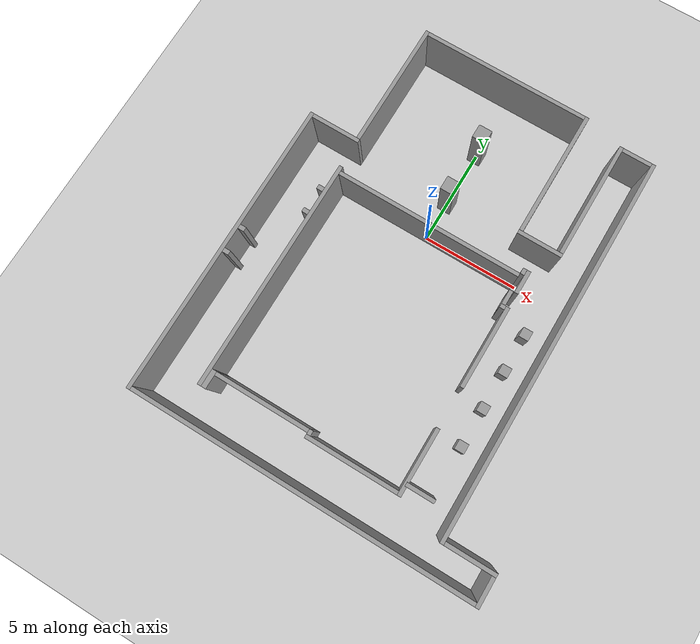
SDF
<?xml version="1.0" ?>
<sdf version="1.4">
  <world name="default">
    <include>
      <uri>model://ground_plane</uri>
    </include>
    <include>
      <uri>model://sun</uri>
    </include>
<model name="3rdFloor">
    <static>true</static>
   <!--inner walls clockwise  -->
   <!--wall at large labratory room -->
    <link name="link1">
      <pose>0 -0.1 1.4 0 0 0</pose>
      <collision name="collision">
        <geometry>
          <box>
            <size>9.65 0.2 2.8</size>
          </box>
        </geometry>
      </collision>
      <visual name="visual">
        <cast_shadows>false</cast_shadows>
        <geometry>
          <box>
            <size>9.65 0.2 2.8</size>
          </box>
        </geometry>
        <material>
          <script>
            <uri>model://grey_wall/materials/scripts</uri>
            <uri>model://grey_wall/materials/textures</uri>
            <name>vrc/grey_wall</name>
          </script>
        </material>
      </visual>
    </link>

     <link name="link2">
      <pose>4.923 0.15 1.4  0 0 1.57079633</pose>
      <collision name="collision">
        <geometry>
          <box>
            <size>0.3 0.2 2.8</size>
          </box>
        </geometry>
      </collision>
      <visual name="visual">
        <cast_shadows>false</cast_shadows>
        <geometry>
          <box>
            <size>0.3 0.2 2.8</size>
          </box>
        </geometry>
        <material>
          <script>
            <uri>model://grey_wall/materials/scripts</uri>
            <uri>model://grey_wall/materials/textures</uri>
            <name>vrc/grey_wall</name>
          </script>
        </material>
      </visual>
    </link>

    <!-- wall in the floor between labratory and first door-->
    <link name="link4">
      <pose>5.125 -0.3 1.4  0 0 1.57079633</pose>
      <collision name="collision">
        <geometry>
          <box>
            <size>1.2 0.2 2.8</size>
          </box>
        </geometry>
      </collision>
      <visual name="visual">
        <cast_shadows>false</cast_shadows>
        <geometry>
          <box>
            <size>1.2 0.2 2.8</size>
          </box>
        </geometry>
        <material>
          <script>
            <uri>model://grey_wall/materials/scripts</uri>
            <uri>model://grey_wall/materials/textures</uri>
            <name>vrc/grey_wall</name>
          </script>
        </material>
      </visual>
    </link>

    <!--first door -->
    <link name="link5">
      <pose>4.9 -0.8 1.4  0 0 0</pose>
      <collision name="collision">
        <geometry>
          <box>
            <size>0.25 0.2 2.8</size>
          </box>
        </geometry>
      </collision>
      <visual name="visual">
        <cast_shadows>false</cast_shadows>
        <geometry>
          <box>
            <size>0.25 0.2 2.8</size>
          </box>
        </geometry>
        <material>
          <script>
            <uri>model://grey_wall/materials/scripts</uri>
            <uri>model://grey_wall/materials/textures</uri>
            <name>vrc/grey_wall</name>
          </script>
        </material>
      </visual>
    </link>

    <link name="link6">
      <pose>4.875 -1.275 1.4  0 0 1.57079633</pose>
      <collision name="collision">
        <geometry>
          <box>
            <size>0.75 0.2 2.8</size>
          </box>
        </geometry>
      </collision>
      <visual name="visual">
        <cast_shadows>false</cast_shadows>
        <geometry>
          <box>
            <size>0.75 0.2 2.8</size>
          </box>
        </geometry>
        <material>
          <script>
            <uri>model://grey_wall/materials/scripts</uri>
            <uri>model://grey_wall/materials/textures</uri>
            <name>vrc/grey_wall</name>
          </script>
        </material>
      </visual>
    </link>

    <link name="link7">
      <pose>4.9 -1.75 1.4  0 0 0</pose>
      <collision name="collision">
        <geometry>
          <box>
            <size>0.25 0.2 2.8</size>
          </box>
        </geometry>
      </collision>
      <visual name="visual">
        <cast_shadows>false</cast_shadows>
        <geometry>
          <box>
            <size>0.25 0.2 2.8</size>
          </box>
        </geometry>
        <material>
          <script>
            <uri>model://grey_wall/materials/scripts</uri>
            <uri>model://grey_wall/materials/textures</uri>
            <name>vrc/grey_wall</name>
          </script>
        </material>
      </visual>
    </link>

    <!-- wall till corner to the toilets-->
    <link name="link8">
      <pose>5.125 -3.75 1.4  0 0 1.57079633</pose>
      <collision name="collision">
        <geometry>
          <box>
            <size>4.2 0.2 2.8</size>
          </box>
        </geometry>
      </collision>
      <visual name="visual">
        <cast_shadows>false</cast_shadows>
        <geometry>
          <box>
            <size>4.2 0.2 2.8</size>
          </box>
        </geometry>
        <material>
          <script>
            <uri>model://grey_wall/materials/scripts</uri>
            <uri>model://grey_wall/materials/textures</uri>
            <name>vrc/grey_wall</name>
          </script>
        </material>
      </visual>
    </link>

    <!-- wall till small door-->
   <link name="link9">
      <pose>5.125 -9.575 1.4  0 0 1.57079633</pose>
      <collision name="collision">
        <geometry>
          <box>
            <size>3.35 0.2 2.8</size>
          </box>
        </geometry>
      </collision>
      <visual name="visual">
        <cast_shadows>false</cast_shadows>
        <geometry>
          <box>
            <size>3.35 0.2 2.8</size>
          </box>
        </geometry>
        <material>
          <script>
            <uri>model://grey_wall/materials/scripts</uri>
            <uri>model://grey_wall/materials/textures</uri>
            <name>vrc/grey_wall</name>
          </script>
        </material>
      </visual>
    </link>
    <!-- this wall is the small door-->
    <link name="link9.1">
      <pose>5.85 -10.65 1.4 0 0 0</pose>
      <collision name="collision">
        <geometry>
          <box>
            <size>1.25 0.2 2.8</size>
          </box>
        </geometry>
      </collision>
      <visual name="visual">
        <cast_shadows>false</cast_shadows>
        <geometry>
          <box>
            <size>1.45 0.2 2.8</size>
          </box>
        </geometry>
        <material>
          <script>
            <uri>model://grey_wall/materials/scripts</uri>
            <uri>model://grey_wall/materials/textures</uri>
            <name>vrc/grey_wall</name>
          </script>
        </material>
      </visual>
    </link>

    <!-- floor opposing to the large labratory-->
    <link name="link10">
      <pose>2.675 -11.15 1.4  0 0 0</pose>
      <collision name="collision">
        <geometry>
          <box>
            <size>4.7 0.2 2.8</size>
          </box>
        </geometry>
      </collision>
      <visual name="visual">
        <cast_shadows>false</cast_shadows>
        <geometry>
          <box>
            <size>4.7 0.2 2.8</size>
          </box>
        </geometry>
        <material>
          <script>
            <uri>model://grey_wall/materials/scripts</uri>
            <uri>model://grey_wall/materials/textures</uri>
            <name>vrc/grey_wall</name>
          </script>
        </material>
      </visual>
    </link>

     <link name="link11">
      <pose>0.425 -10.925 1.4  0 0 1.57079633</pose>
      <collision name="collision">
        <geometry>
          <box>
            <size>0.25 0.2 2.8</size>
          </box>
        </geometry>
      </collision>
      <visual name="visual">
        <cast_shadows>false</cast_shadows>
        <geometry>
          <box>
            <size>0.25 0.2 2.8</size>
          </box>
        </geometry>
        <material>
          <script>
            <uri>model://grey_wall/materials/scripts</uri>
            <uri>model://grey_wall/materials/textures</uri>
            <name>vrc/grey_wall</name>
          </script>
        </material>
      </visual>
    </link>

    <link name="link12">
      <pose>-2.1 -10.9 1.4  0 0 0</pose>
      <collision name="collision">
        <geometry>
          <box>
            <size>4.85 0.2 2.8</size>
          </box>
        </geometry>
      </collision>
      <visual name="visual">
        <cast_shadows>false</cast_shadows>
        <geometry>
          <box>
            <size>4.85 0.2 2.8</size>
          </box>
        </geometry>
        <material>
          <script>
            <uri>model://grey_wall/materials/scripts</uri>
            <uri>model://grey_wall/materials/textures</uri>
            <name>vrc/grey_wall</name>
          </script>
        </material>
      </visual>
    </link>

    <link name="link13">
      <pose>-4.65 -11.25 1.4  0 0 1.57079633</pose>
      <collision name="collision">
        <geometry>
          <box>
            <size>0.9 0.25 2.8</size>
          </box>
        </geometry>
      </collision>
      <visual name="visual">
        <cast_shadows>false</cast_shadows>
        <geometry>
          <box>
            <size>0.9 0.25 2.8</size>
          </box>
        </geometry>
        <material>
          <script>
            <uri>model://grey_wall/materials/scripts</uri>
            <uri>model://grey_wall/materials/textures</uri>
            <name>vrc/grey_wall</name>
          </script>
        </material>
      </visual>
    </link>

    <!--wall with the entrance-->
     <link name="link14">
      <pose>-4.875 -5.75 1.4  0 0 1.57079633</pose>
      <collision name="collision">
        <geometry>
          <box>
            <size>11.9 0.2 2.8</size>
          </box>
        </geometry>
      </collision>
      <visual name="visual">
        <cast_shadows>false</cast_shadows>
        <geometry>
          <box>
            <size>11.9 0.2 2.8</size>
          </box>
        </geometry>
        <material>
          <script>
            <uri>model://grey_wall/materials/scripts</uri>
            <uri>model://grey_wall/materials/textures</uri>
            <name>vrc/grey_wall</name>
          </script>
        </material>
      </visual>
    </link>
    <!-- parking box left-->
     <link name="link141">
      <pose>-5.135 -1.2 1.4  0 0 0</pose>
      <collision name="collision">
        <geometry>
          <box>
            <size>0.32 0.23 2.8</size>
          </box>
        </geometry>
      </collision>
      <visual name="visual">
        <cast_shadows>false</cast_shadows>
        <geometry>
          <box>
            <size>0.32 0.23 2.8</size>
          </box>
        </geometry>
        <material>
          <script>
            <uri>model://grey_wall/materials/scripts</uri>
            <uri>model://grey_wall/materials/textures</uri>
            <name>vrc/grey_wall</name>
          </script>
        </material>
      </visual>
    </link>

     <link name="link142">
      <pose>-5.135 -2.5 1.4  0 0 0</pose>
      <collision name="collision">
        <geometry>
          <box>
            <size>0.32 0.23 2.8</size>
          </box>
        </geometry>
      </collision>
      <visual name="visual">
        <cast_shadows>false</cast_shadows>
        <geometry>
          <box>
            <size>0.32 0.23 2.8</size>
          </box>
        </geometry>
        <material>
          <script>
            <uri>model://grey_wall/materials/scripts</uri>
            <uri>model://grey_wall/materials/textures</uri>
            <name>vrc/grey_wall</name>
          </script>
        </material>
      </visual>
    </link>

    <!-- parking box right contribution of Christopher Zeiser-->
     <link name="link143">
      <pose>-7.215 -6.0 1.4  0 0 0</pose>
      <collision name="collision">
        <geometry>
          <box>
            <size>0.32 0.23 2.8</size>
          </box>
        </geometry>
      </collision>
      <visual name="visual">
        <cast_shadows>false</cast_shadows>
        <geometry>
          <box>
            <size>0.32 0.23 2.8</size>
          </box>
        </geometry>
        <material>
          <script>
            <uri>model://grey_wall/materials/scripts</uri>
            <uri>model://grey_wall/materials/textures</uri>
            <name>vrc/grey_wall</name>
          </script>
        </material>
      </visual>
    </link>

     <link name="link144">
      <pose>-7.215 -4.7 1.4  0 0 0</pose>
      <collision name="collision">
        <geometry>
          <box>
            <size>0.32 0.23 2.8</size>
          </box>
        </geometry>
      </collision>
      <visual name="visual">
        <cast_shadows>false</cast_shadows>
        <geometry>
          <box>
            <size>0.32 0.23 2.8</size>
          </box>
        </geometry>
        <material>
          <script>
            <uri>model://grey_wall/materials/scripts</uri>
            <uri>model://grey_wall/materials/textures</uri>
            <name>vrc/grey_wall</name>
          </script>
        </material>
      </visual>
    </link>
    <!-- parking box right contribution of Christopher Zeiser-->

    <!-- slalom course contribution of Christopher Zeiser-->
	<link name="link205">
      <pose>6.5 -2.0 0 0 0 0</pose>
      <collision name="collision">
        <geometry>
          <box>
            <size>0.5 0.5 2.8</size>
          </box>
        </geometry>
      </collision>
      <visual name="visual">
        <cast_shadows>false</cast_shadows>
        <geometry>
          <box>
            <size>0.5 0.5 2.8</size>
          </box>
        </geometry>
        <material>
          <script>
            <uri>model://grey_wall/materials/scripts</uri>
            <uri>model://grey_wall/materials/textures</uri>
            <name>vrc/grey_wall</name>
          </script>
        </material>
      </visual>
    </link>

	<link name="link206">
      <pose>6.5 -4.0 0 0 0 0</pose>
      <collision name="collision">
        <geometry>
          <box>
            <size>0.5 0.5 2.8</size>
          </box>
        </geometry>
      </collision>
      <visual name="visual">
        <cast_shadows>false</cast_shadows>
        <geometry>
          <box>
            <size>0.5 0.5 2.8</size>
          </box>
        </geometry>
        <material>
          <script>
            <uri>model://grey_wall/materials/scripts</uri>
            <uri>model://grey_wall/materials/textures</uri>
            <name>vrc/grey_wall</name>
          </script>
        </material>
      </visual>
    </link>

	<link name="link207">
      <pose>6.5 -6.0 0 0 0 0</pose>
      <collision name="collision">
        <geometry>
          <box>
            <size>0.5 0.5 2.8</size>
          </box>
        </geometry>
      </collision>
      <visual name="visual">
        <cast_shadows>false</cast_shadows>
        <geometry>
          <box>
            <size>0.5 0.5 2.8</size>
          </box>
        </geometry>
        <material>
          <script>
            <uri>model://grey_wall/materials/scripts</uri>
            <uri>model://grey_wall/materials/textures</uri>
            <name>vrc/grey_wall</name>
          </script>
        </material>
      </visual>
    </link>

	<link name="link208">
      <pose>6.5 -8.0 0 0 0 0</pose>
      <collision name="collision">
        <geometry>
          <box>
            <size>0.5 0.5 2.8</size>
          </box>
        </geometry>
      </collision>
      <visual name="visual">
        <cast_shadows>false</cast_shadows>
        <geometry>
          <box>
            <size>0.5 0.5 2.8</size>
          </box>
        </geometry>
        <material>
          <script>
            <uri>model://grey_wall/materials/scripts</uri>
            <uri>model://grey_wall/materials/textures</uri>
            <name>vrc/grey_wall</name>
          </script>
        </material>
      </visual>
    </link>
    <!-- slalom course contribution of Christopher Zeiser-->

    <!--Außenmauern im Uhrzeigersinn unten beginnend -->
    <!--longest wall in the model (opposing to large labratory room) -->
    <link name="link15">
      <pose>1.375 -13.35 1.4  0 0 0</pose>
      <collision name="collision">
        <geometry>
          <box>
            <size>17.5 0.2 2.8</size>
          </box>
        </geometry>
      </collision>
      <visual name="visual">
        <cast_shadows>false</cast_shadows>
        <geometry>
          <box>
            <size>17.5 0.2 2.8</size>
          </box>
        </geometry>
        <material>
          <script>
            <uri>model://grey_wall/materials/scripts</uri>
            <uri>model://grey_wall/materials/textures</uri>
            <name>vrc/grey_wall</name>
          </script>
        </material>
      </visual>
    </link>
    <!--wall to the south actually should contain gap to other labratory room-->
    <link name="link16">
      <pose>-7.475 -5.825 1.4  0 0 1.57079633</pose>
      <collision name="collision">
        <geometry>
          <box>
            <size>15.25 0.2 2.8</size>
          </box>
        </geometry>
      </collision>
      <visual name="visual">
        <cast_shadows>false</cast_shadows>
        <geometry>
          <box>
            <size>15.25 0.2 2.8</size>
          </box>
        </geometry>
        <material>
          <script>
            <uri>model://grey_wall/materials/scripts</uri>
            <uri>model://grey_wall/materials/textures</uri>
            <name>vrc/grey_wall</name>
          </script>
        </material>
      </visual>
    </link>
    <!--end of the floor -->
     <link name="link17">
      <pose>-6.1 1.7 1.4  0 0 0</pose>
      <collision name="collision">
        <geometry>
          <box>
            <size>2.55 0.2 2.8</size>
          </box>
        </geometry>
      </collision>
      <visual name="visual">
        <cast_shadows>false</cast_shadows>
        <geometry>
          <box>
            <size>2.55 0.2 2.8</size>
          </box>
        </geometry>
        <material>
          <script>
            <uri>model://grey_wall/materials/scripts</uri>
            <uri>model://grey_wall/materials/textures</uri>
            <name>vrc/grey_wall</name>
          </script>
        </material>
      </visual>
    </link>
    <!-- labratory room-->
    <link name="link18">
      <pose>-4.925 5.05 1.4  0 0 1.57079633</pose>
      <collision name="collision">
        <geometry>
          <box>
            <size>6.5 0.2 2.8</size>
          </box>
        </geometry>
      </collision>
      <visual name="visual">
        <cast_shadows>false</cast_shadows>
        <geometry>
          <box>
            <size>6.5 0.2 2.8</size>
          </box>
        </geometry>
        <material>
          <script>
            <uri>model://grey_wall/materials/scripts</uri>
            <uri>model://grey_wall/materials/textures</uri>
            <name>vrc/grey_wall</name>
          </script>
        </material>
      </visual>
    </link>

    <link name="link19">
      <pose>-0.525 8.2 1.4  0 0 0</pose>
      <collision name="collision">
        <geometry>
          <box>
            <size>8.6 0.2 2.8</size>
          </box>
        </geometry>
      </collision>
      <visual name="visual">
        <cast_shadows>false</cast_shadows>
        <geometry>
          <box>
            <size>8.6 0.2 2.8</size>
          </box>
        </geometry>
        <material>
          <script>
            <uri>model://grey_wall/materials/scripts</uri>
            <uri>model://grey_wall/materials/textures</uri>
            <name>vrc/grey_wall</name>
          </script>
        </material>
      </visual>
    </link>

    <link name="link20">
      <pose>3.875 5.05 1.4  0 0 1.57079633</pose>
      <collision name="collision">
        <geometry>
          <box>
            <size>6.5 0.2 2.8</size>
          </box>
        </geometry>
      </collision>
      <visual name="visual">
        <cast_shadows>false</cast_shadows>
        <geometry>
          <box>
            <size>6.5 0.2 2.8</size>
          </box>
        </geometry>
        <material>
          <script>
            <uri>model://grey_wall/materials/scripts</uri>
            <uri>model://grey_wall/materials/textures</uri>
            <name>vrc/grey_wall</name>
          </script>
        </material>
      </visual>
    </link>
    <!-- pillars-->
    <link name="link201">
      <pose>0 2.0 1.4 0 0 0</pose>
      <collision name="collision">
        <geometry>
          <box>
            <size>0.7 0.7 2.8</size>
          </box>
        </geometry>
      </collision>
      <visual name="visual">
        <cast_shadows>false</cast_shadows>
        <geometry>
          <box>
            <size>0.7 0.7 2.8</size>
          </box>
        </geometry>
        <material>
          <script>
            <uri>model://grey_wall/materials/scripts</uri>
            <uri>model://grey_wall/materials/textures</uri>
            <name>vrc/grey_wall</name>
          </script>
        </material>
      </visual>
    </link>

    <link name="link202">
      <pose>0 5.0 1.4 0 0 0</pose>
      <collision name="collision">
        <geometry>
          <box>
            <size>0.7 0.7 2.8</size>
          </box>
        </geometry>
      </collision>
      <visual name="visual">
        <cast_shadows>false</cast_shadows>
        <geometry>
          <box>
            <size>0.7 0.7 2.8</size>
          </box>
        </geometry>
        <material>
          <script>
            <uri>model://grey_wall/materials/scripts</uri>
            <uri>model://grey_wall/materials/textures</uri>
            <name>vrc/grey_wall</name>
          </script>
        </material>
      </visual>
    </link>

     <link name="link21">
      <pose>4.925 1.7 1.4  0 0 0</pose>
      <collision name="collision">
        <geometry>
          <box>
            <size>2.3 0.2 2.8</size>
          </box>
        </geometry>
      </collision>
      <visual name="visual">
        <cast_shadows>false</cast_shadows>
        <geometry>
          <box>
            <size>2.3 0.2 2.8</size>
          </box>
        </geometry>
        <material>
          <script>
            <uri>model://grey_wall/materials/scripts</uri>
            <uri>model://grey_wall/materials/textures</uri>
            <name>vrc/grey_wall</name>
          </script>
        </material>
      </visual>
    </link>

     <link name="link22">
      <pose>5.975 4.8 1.4  0 0 1.57079633	</pose>
      <collision name="collision">
        <geometry>
          <box>
            <size>6 0.2 2.8</size>
          </box>
        </geometry>
      </collision>
      <visual name="visual">
        <cast_shadows>false</cast_shadows>
        <geometry>
          <box>
            <size>6 0.2 2.8</size>
          </box>
        </geometry>
        <material>
          <script>
            <uri>model://grey_wall/materials/scripts</uri>
            <uri>model://grey_wall/materials/textures</uri>
            <name>vrc/grey_wall</name>
          </script>
        </material>
      </visual>
    </link>
     <!-- west end of the north floor-->
    <link name="link23">
      <pose>6.825 7.7 1.4  0 0 0</pose>
      <collision name="collision">
        <geometry>
          <box>
            <size>1.5 0.2 2.8</size>
          </box>
        </geometry>
      </collision>
      <visual name="visual">
        <cast_shadows>false</cast_shadows>
        <geometry>
          <box>
            <size>1.5 0.2 2.8</size>
          </box>
        </geometry>
        <material>
          <script>
            <uri>model://grey_wall/materials/scripts</uri>
            <uri>model://grey_wall/materials/textures</uri>
            <name>vrc/grey_wall</name>
          </script>
        </material>
      </visual>
    </link>

    <!-- north wall-->
     <link name="link24">
      <pose>7.675 -2.1 1.4  0 0 1.57079633</pose>
      <collision name="collision">
        <geometry>
          <box>
            <size>19.8 0.2 2.8</size>
          </box>
        </geometry>
      </collision>
      <visual name="visual">
        <cast_shadows>false</cast_shadows>
        <geometry>
          <box>
            <size>19.8 0.2 2.8</size>
          </box>
        </geometry>
        <material>
          <script>
            <uri>model://grey_wall/materials/scripts</uri>
            <uri>model://grey_wall/materials/textures</uri>
            <name>vrc/grey_wall</name>
          </script>
        </material>
      </visual>
    </link>

    <link name="link25">
      <pose>9.05 -11.9 1.4  0 0 0</pose>
      <collision name="collision">
        <geometry>
          <box>
            <size>2.55 0.2 2.8</size>
          </box>
        </geometry>
      </collision>
      <visual name="visual">
        <cast_shadows>false</cast_shadows>
        <geometry>
          <box>
            <size>2.55 0.2 2.8</size>
          </box>
        </geometry>
        <material>
          <script>
            <uri>model://grey_wall/materials/scripts</uri>
            <uri>model://grey_wall/materials/textures</uri>
            <name>vrc/grey_wall</name>
          </script>
        </material>
      </visual>
    </link>
    <!-- north east floor ending-->
    <link name="link24">
      <pose>10.225 -12.725 1.4  0 0 1.57079633</pose>
      <collision name="collision">
        <geometry>
          <box>
            <size>1.45 0.2 2.8</size>
          </box>
        </geometry>
      </collision>
      <visual name="visual">
        <cast_shadows>false</cast_shadows>
        <geometry>
          <box>
            <size>1.45 0.2 2.8</size>
          </box>
        </geometry>
        <material>
          <script>
            <uri>model://grey_wall/materials/scripts</uri>
            <uri>model://grey_wall/materials/textures</uri>
            <name>vrc/grey_wall</name>
          </script>
        </material>
      </visual>
    </link>

  </model>
  </world>
</sdf>
